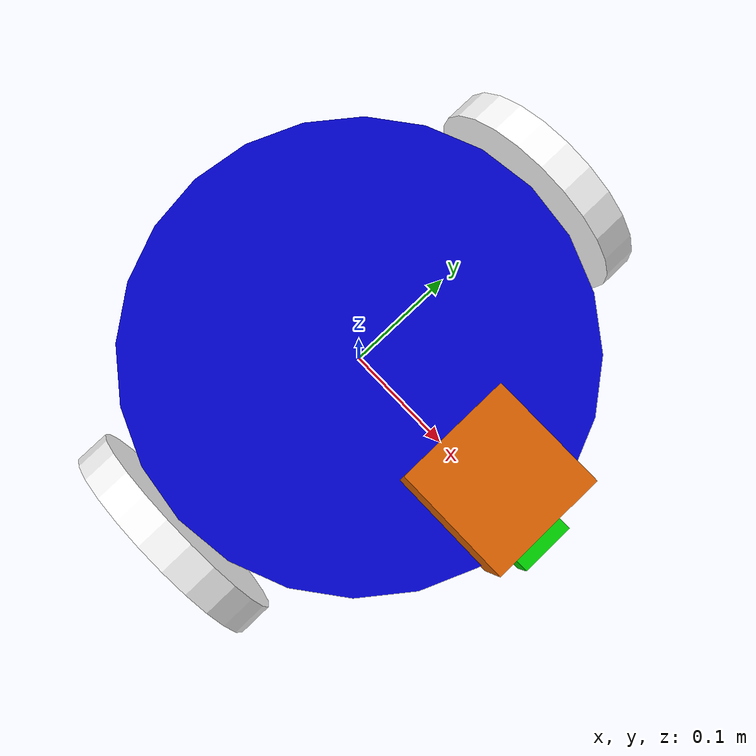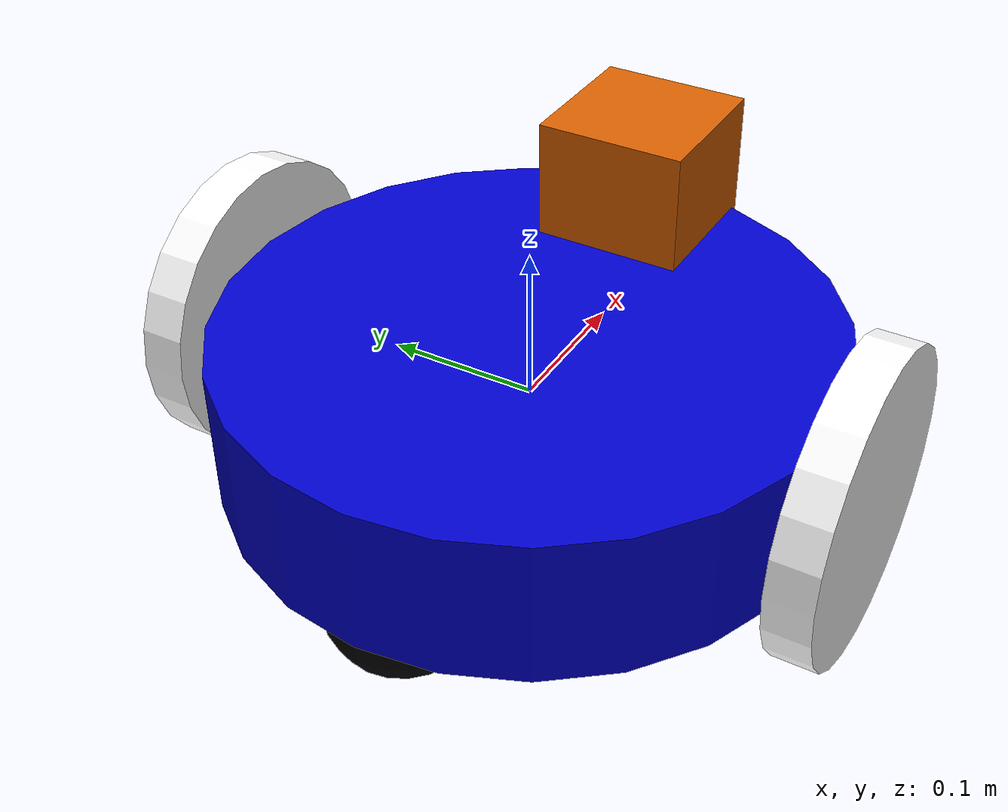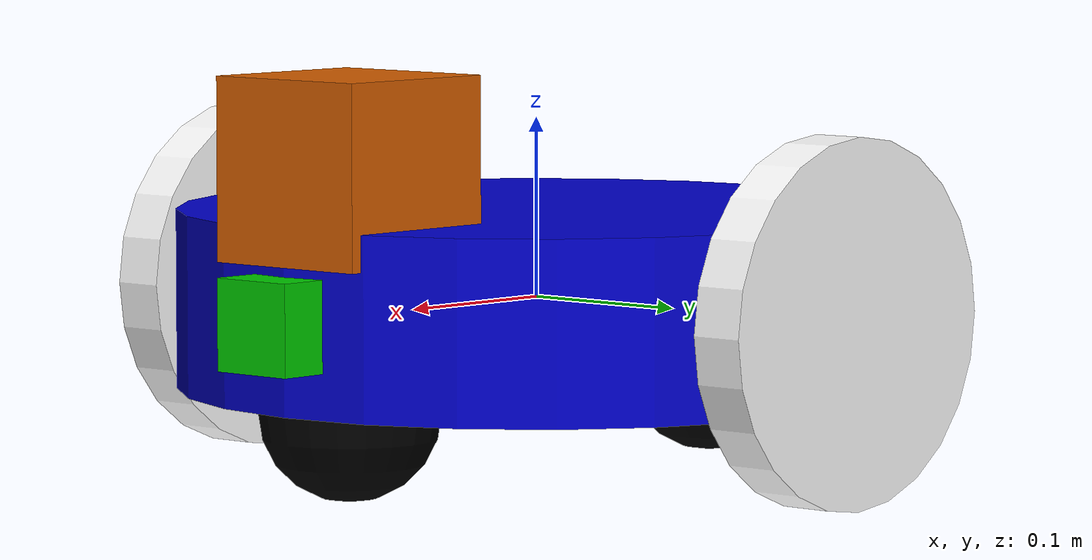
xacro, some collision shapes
<?xml version="1.0"?>
<robot name="base" xmlns:xacro="http://ros.org/wiki/xacro">

  <xacro:include filename="$(find base_robot)/models/base.gazebo" />

	<xacro:arg name="robot_param" default="robot_description"/>
	<xacro:base_gazebo robot_parameter_name="$(arg robot_param)"/>

	<xacro:property name="pi" value="3.1415" />

  <xacro:macro name="cylinder_inertia" params="m r h">
    <inertia  ixx="${m*(3*r*r+h*h)/12}" ixy = "0" ixz = "0"
      iyy="${m*(3*r*r+h*h)/12}" iyz = "0"
      izz="${m*r*r/2}"
    />
  </xacro:macro>

  <xacro:macro name="box_inertia" params="m x y z">
    <inertia  ixx="${m*(y*y+z*z)/12}" ixy = "0" ixz = "0"
      iyy="${m*(x*x+z*z)/12}" iyz = "0"
      izz="${m*(x*x+z*z)/12}"
    />
  </xacro:macro>

  <xacro:macro name="sphere_inertia" params="m r">
    <inertia  ixx="${2*m*r*r/5}" ixy = "0" ixz = "0"
      iyy="${2*m*r*r/5}" iyz = "0"
      izz="${2*m*r*r/5}"
    />
  </xacro:macro>

  <material name="red">
    <color rgba="0.8 0 0 1"/>
  </material>

  <material name="green">
    <color rgba="0 0.8 0 1"/>
  </material>

  <material name="blue">
    <color rgba="0 0 0.8 1"/>
  </material>

  <material name="white">
    <color rgba="1 1 1 1"/>
  </material>

	<material name="black">
    <color rgba="0 0 0 1"/>
  </material>

	<link name="base_link">
		<visual>
			<geometry>
				<cylinder length="0.10" radius="0.20"/>
			</geometry>
			<material name="blue"/>
		</visual>
    <collision>
      <geometry>
        <cylinder length="0.10" radius="0.20"/>
      </geometry>
    </collision>
		<inertial>
      <mass value="1"/>
      <!--inertia ixx="0.541" ixy="0.0" ixz="0.0" iyy="0.541" iyz="0.0" izz="1"/-->
			<xacro:cylinder_inertia m="1" r="0.20" h="0.10"/>
    </inertial>
	</link>

	<xacro:macro name="wheel" params="prefix reflect">
		<link name="${prefix}_wheel">
			<visual>
				<geometry>
					<cylinder length="0.03" radius="0.10"/>
				</geometry>
				<origin rpy="${pi/2} 0 0" xyz="0 0 0"/>
				<material name="white"/>
			</visual>
			<collision>
		    <geometry>
		      <cylinder length="0.03" radius="0.10"/>
		    </geometry>
		    <origin rpy="${pi/2} 0 0" xyz="0 0 0"/>
		  </collision>
		  <inertial>
		    <mass value="0.1"/>
		    <!--inertia ixx="0.001" ixy="0.0" ixz="0.0" iyy="0.001" iyz="0.0" izz="0.001"/-->
				<xacro:cylinder_inertia m="0.1" r="0.10" h="0.03"/>
		  </inertial>
		</link>
		<joint name="${prefix}_wheel_joint" type="continuous">
			<parent link="base_link"/>
			<child link="${prefix}_wheel"/>
			<axis xyz="0 1 0"/>
			<origin xyz="0 ${-1*reflect*0.215} 0"/>
		</joint>

    <transmission name="${prefix}_wheel_trans">
      <type>transmission_interface/SimpleTransmission</type>
      <actuator name="${prefix}_wheel_motor">
        <mechanicalReduction>1</mechanicalReduction>
      </actuator>
      <joint name="${prefix}_wheel_joint">
        <hardwareInterface>hardware_interface/VelocityJointInterface</hardwareInterface>
      </joint>
    </transmission>

	</xacro:macro>

	<xacro:wheel prefix="right" reflect="1"/>
	<xacro:wheel prefix="left" reflect="-1"/>

	<xacro:macro name="caster" params="prefix reflect">
		<link name="${prefix}_caster">
			<visual>
				<geometry>
					<sphere radius="0.05"/>
				</geometry>
				<origin rpy="0 0 0" xyz="0 0 0"/>
				<material name="black"/>
			</visual>
			<collision>
		    <geometry>
		      <sphere radius="0.05"/>
		    </geometry>
		    <origin rpy="0 0 0" xyz="0 0 0"/>
		  </collision>
		  <inertial>
		    <mass value="0.01"/>
		    <xacro:sphere_inertia m="0.01" r="0.05"/>
		  </inertial>
		</link>
		<joint name="${prefix}_caster_joint" type="fixed">
			<parent link="base_link"/>
			<child link="${prefix}_caster"/>
			<origin xyz="${reflect*0.15} 0 -0.05"/>
		</joint>
	</xacro:macro>

	<xacro:caster prefix="front" reflect="1"/>
	<xacro:caster prefix="rear" reflect="-1"/>

  <!-- Hokuyo Laser -->
  <link name="hokuyo_link">
    <collision>
      <origin xyz="0 0 0" rpy="0 0 0"/>
      <geometry>
    <box size="0.1 0.1 0.1"/>
      </geometry>
    </collision>

    <visual>
      <origin xyz="0 0 0" rpy="0 0 0"/>
      <geometry>
        <mesh filename="package://base_robot/meshes/hokuyo.dae"/>
      </geometry>
    </visual>

    <inertial>
      <mass value="1e-5" />
      <origin xyz="0 0 0" rpy="0 0 0"/>
      <inertia ixx="1e-6" ixy="0" ixz="0" iyy="1e-6" iyz="0" izz="1e-6" />
    </inertial>
  </link>

  <joint name="hokuyo_joint" type="fixed">
    <axis xyz="0 1 0" />
    <origin xyz="0.15 0 0.08" rpy="0 0 0"/>
    <parent link="base_link"/>
    <child link="hokuyo_link"/>
  </joint>

	<link name="camera">
    <collision>
      <origin xyz="0 0 0" rpy="0 0 0"/>
      <geometry>
        <box size="0.05 0.05 0.05"/>
      </geometry>
    </collision>

    <visual>
      <origin xyz="0 0 0" rpy="0 0 0"/>
      <geometry>
        <box size="0.05 0.05 0.05"/>
      </geometry>
      <material name="green"/>
    </visual>

    <inertial>
      <mass value="0.1" />
      <origin xyz="0 0 0" rpy="0 0 0"/>
      <box_inertia m="0.1" x="0.05" y="0.05" z="0.05" />
      <inertia ixx="1e-6" ixy="0" ixz="0" iyy="1e-6" iyz="0" izz="1e-6" />
    </inertial>
  </link>

  <joint name="camera_joint" type="fixed">
    <axis xyz="0 1 0" />
    <origin xyz="0.2 0 0" rpy="0 0 0"/>
    <parent link="base_link"/>
    <child link="camera"/>
  </joint>

</robot>
